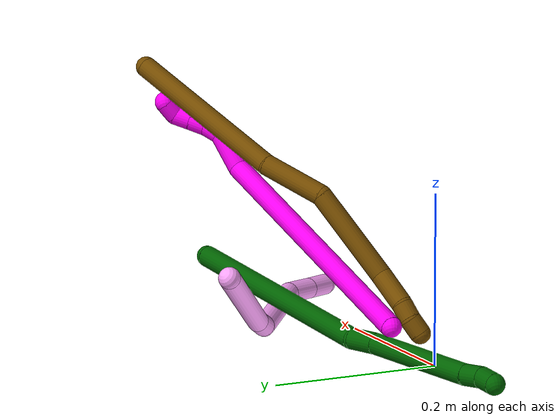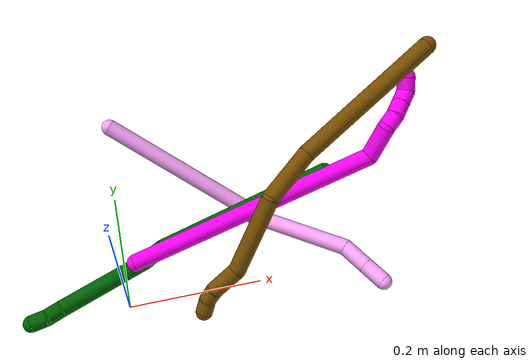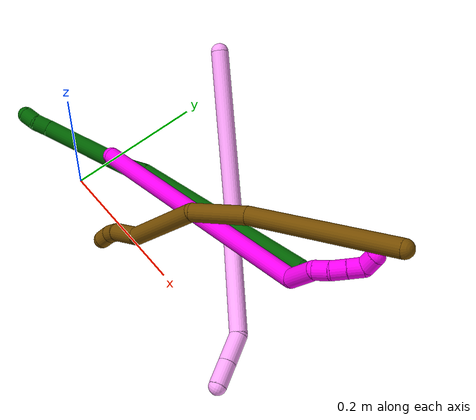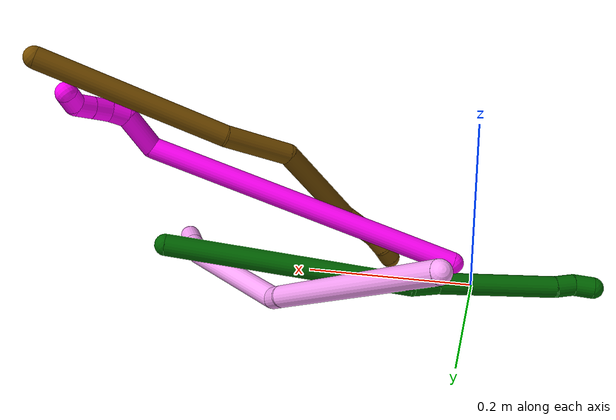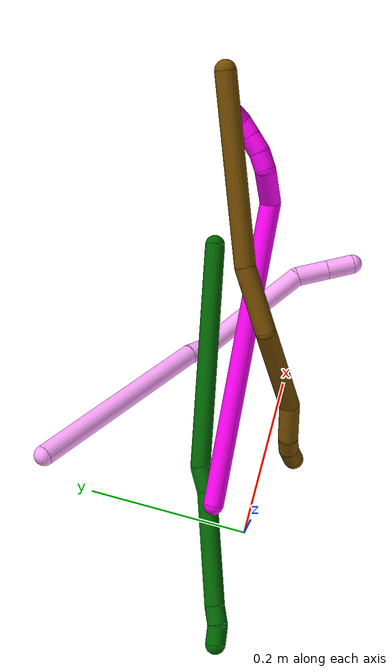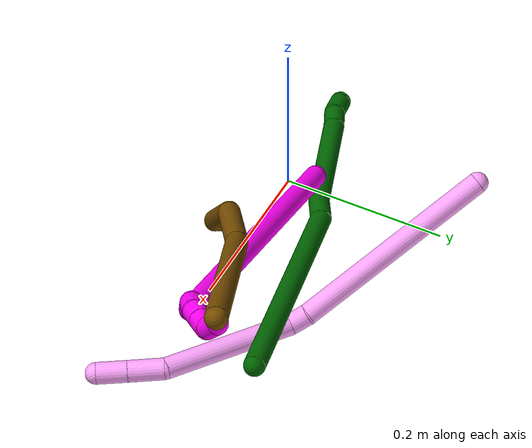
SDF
<sdf version="1.7">
 <world name="default">
  <model name="4">
   <static>0</static>
   <link name="4">
    <collision name="collision-cylinder-e_1_1_4">
     <pose>0.012977 -0.065829 0.101463 0.575531 0.10689 0.031665</pose>
     <geometry><cylinder><radius>0.0125</radius><length>0.243282</length></cylinder></geometry>
     <surface>
      <friction><ode><mu>1.16</mu><mu2>1.16</mu2><slip1>0</slip1><slip2>0</slip2></ode></friction>
      <contact><ode><kp>1e+06</kp><kd>1</kd><max_vel>0</max_vel><min_depth>0.001</min_depth></ode></contact>
     </surface>
    </collision>
    <visual name="visual-cylinder-e_1_1_4">
     <pose>0.012977 -0.065829 0.101463 0.575531 0.10689 0.031665</pose>
     <geometry><cylinder><radius>0.0125</radius><length>0.243282</length></cylinder></geometry>
     <material><ambient>1 0.65098 0.996078 1</ambient></material>
    </visual>
    <collision name="collision-cylinder-e_2_4_5">
     <pose>0.027491 -0.135786 0.213614 0.368543 0.133273 0.024876</pose>
     <geometry><cylinder><radius>0.0125</radius><length>0.023121</length></cylinder></geometry>
     <surface>
      <friction><ode><mu>1.16</mu><mu2>1.16</mu2><slip1>0</slip1><slip2>0</slip2></ode></friction>
      <contact><ode><kp>1e+06</kp><kd>1</kd><max_vel>0</max_vel><min_depth>0.001</min_depth></ode></contact>
     </surface>
    </collision>
    <visual name="visual-cylinder-e_2_4_5">
     <pose>0.027491 -0.135786 0.213614 0.368543 0.133273 0.024876</pose>
     <geometry><cylinder><radius>0.0125</radius><length>0.023121</length></cylinder></geometry>
     <material><ambient>1 0.65098 0.996078 1</ambient></material>
    </visual>
    <collision name="collision-cylinder-e_3_5_6">
     <pose>0.069698 -0.183652 0.274767 0.714124 0.547026 0.208556</pose>
     <geometry><cylinder><radius>0.0125</radius><length>0.156382</length></cylinder></geometry>
     <surface>
      <friction><ode><mu>1.16</mu><mu2>1.16</mu2><slip1>0</slip1><slip2>0</slip2></ode></friction>
      <contact><ode><kp>1e+06</kp><kd>1</kd><max_vel>0</max_vel><min_depth>0.001</min_depth></ode></contact>
     </surface>
    </collision>
    <visual name="visual-cylinder-e_3_5_6">
     <pose>0.069698 -0.183652 0.274767 0.714124 0.547026 0.208556</pose>
     <geometry><cylinder><radius>0.0125</radius><length>0.156382</length></cylinder></geometry>
     <material><ambient>1 0.65098 0.996078 1</ambient></material>
    </visual>
    <collision name="collision-cylinder-e_4_6_7">
     <pose>0.121922 -0.230913 0.342292 0.2036 0.585575 0.061569</pose>
     <geometry><cylinder><radius>0.0125</radius><length>0.041808</length></cylinder></geometry>
     <surface>
      <friction><ode><mu>1.16</mu><mu2>1.16</mu2><slip1>0</slip1><slip2>0</slip2></ode></friction>
      <contact><ode><kp>1e+06</kp><kd>1</kd><max_vel>0</max_vel><min_depth>0.001</min_depth></ode></contact>
     </surface>
    </collision>
    <visual name="visual-cylinder-e_4_6_7">
     <pose>0.121922 -0.230913 0.342292 0.2036 0.585575 0.061569</pose>
     <geometry><cylinder><radius>0.0125</radius><length>0.041808</length></cylinder></geometry>
     <material><ambient>1 0.65098 0.996078 1</ambient></material>
    </visual>
    <collision name="collision-cylinder-e_5_7_2">
     <pose>0.143433 -0.237444 0.373679 0.206959 0.597333 0.063924</pose>
     <geometry><cylinder><radius>0.0125</radius><length>0.035407</length></cylinder></geometry>
     <surface>
      <friction><ode><mu>1.16</mu><mu2>1.16</mu2><slip1>0</slip1><slip2>0</slip2></ode></friction>
      <contact><ode><kp>1e+06</kp><kd>1</kd><max_vel>0</max_vel><min_depth>0.001</min_depth></ode></contact>
     </surface>
    </collision>
    <visual name="visual-cylinder-e_5_7_2">
     <pose>0.143433 -0.237444 0.373679 0.206959 0.597333 0.063924</pose>
     <geometry><cylinder><radius>0.0125</radius><length>0.035407</length></cylinder></geometry>
     <material><ambient>1 0.65098 0.996078 1</ambient></material>
    </visual>
    <collision name="collision-sphere-2">
     <pose>0.15339 -0.240451 0.388005 0 -0 0</pose>
     <geometry><sphere><radius>0.0125</radius></sphere></geometry>
     <surface>
      <friction><ode><mu>1.16</mu><mu2>1.16</mu2><slip1>0</slip1><slip2>0</slip2></ode></friction>
      <contact><ode><kp>1e+06</kp><kd>1</kd><max_vel>0</max_vel><min_depth>0.001</min_depth></ode></contact>
     </surface>
    </collision>
    <visual name="visual-sphere-2">
     <pose>0.15339 -0.240451 0.388005 0 -0 0</pose>
     <geometry><sphere><radius>0.0125</radius></sphere></geometry>
     <material><ambient>1 0.65098 0.996078 1</ambient></material>
    </visual>
    <collision name="collision-sphere-7">
     <pose>0.133475 -0.234436 0.359354 0 -0 0</pose>
     <geometry><sphere><radius>0.0125</radius></sphere></geometry>
     <surface>
      <friction><ode><mu>1.16</mu><mu2>1.16</mu2><slip1>0</slip1><slip2>0</slip2></ode></friction>
      <contact><ode><kp>1e+06</kp><kd>1</kd><max_vel>0</max_vel><min_depth>0.001</min_depth></ode></contact>
     </surface>
    </collision>
    <visual name="visual-sphere-7">
     <pose>0.133475 -0.234436 0.359354 0 -0 0</pose>
     <geometry><sphere><radius>0.0125</radius></sphere></geometry>
     <material><ambient>1 0.65098 0.996078 1</ambient></material>
    </visual>
    <collision name="collision-sphere-6">
     <pose>0.110369 -0.227391 0.325231 0 -0 0</pose>
     <geometry><sphere><radius>0.0125</radius></sphere></geometry>
     <surface>
      <friction><ode><mu>1.16</mu><mu2>1.16</mu2><slip1>0</slip1><slip2>0</slip2></ode></friction>
      <contact><ode><kp>1e+06</kp><kd>1</kd><max_vel>0</max_vel><min_depth>0.001</min_depth></ode></contact>
     </surface>
    </collision>
    <visual name="visual-sphere-6">
     <pose>0.110369 -0.227391 0.325231 0 -0 0</pose>
     <geometry><sphere><radius>0.0125</radius></sphere></geometry>
     <material><ambient>1 0.65098 0.996078 1</ambient></material>
    </visual>
    <collision name="collision-sphere-5">
     <pose>0.029027 -0.139913 0.224303 0 -0 0</pose>
     <geometry><sphere><radius>0.0125</radius></sphere></geometry>
     <surface>
      <friction><ode><mu>1.16</mu><mu2>1.16</mu2><slip1>0</slip1><slip2>0</slip2></ode></friction>
      <contact><ode><kp>1e+06</kp><kd>1</kd><max_vel>0</max_vel><min_depth>0.001</min_depth></ode></contact>
     </surface>
    </collision>
    <visual name="visual-sphere-5">
     <pose>0.029027 -0.139913 0.224303 0 -0 0</pose>
     <geometry><sphere><radius>0.0125</radius></sphere></geometry>
     <material><ambient>1 0.65098 0.996078 1</ambient></material>
    </visual>
    <collision name="collision-sphere-1">
     <geometry><sphere><radius>0.0125</radius></sphere></geometry>
     <surface>
      <friction><ode><mu>1.16</mu><mu2>1.16</mu2><slip1>0</slip1><slip2>0</slip2></ode></friction>
      <contact><ode><kp>1e+06</kp><kd>1</kd><max_vel>0</max_vel><min_depth>0.001</min_depth></ode></contact>
     </surface>
    </collision>
    <visual name="visual-sphere-1">
     <geometry><sphere><radius>0.0125</radius></sphere></geometry>
     <material><ambient>1 0.65098 0.996078 1</ambient></material>
    </visual>
    <collision name="collision-sphere-4">
     <pose>0.025955 -0.131658 0.202926 0 -0 0</pose>
     <geometry><sphere><radius>0.0125</radius></sphere></geometry>
     <surface>
      <friction><ode><mu>1.16</mu><mu2>1.16</mu2><slip1>0</slip1><slip2>0</slip2></ode></friction>
      <contact><ode><kp>1e+06</kp><kd>1</kd><max_vel>0</max_vel><min_depth>0.001</min_depth></ode></contact>
     </surface>
    </collision>
    <visual name="visual-sphere-4">
     <pose>0.025955 -0.131658 0.202926 0 -0 0</pose>
     <geometry><sphere><radius>0.0125</radius></sphere></geometry>
     <material><ambient>1 0.65098 0.996078 1</ambient></material>
    </visual>
    <inertial>
     <pose>0.049736 -0.131871 0.200266 0 -0 0</pose>
     <mass>0.5</mass>
     <inertia>
      <ixx>0.001594</ixx>
      <ixy>0</ixy>
      <ixz>0</ixz>
      <iyy>0.001371</iyy>
      <iyz>0</iyz>
      <izz>0.000564</izz>
     </inertia>
    </inertial>
   </link>
   <pose>0.015862 0.248704 0.1243 -3.11904 -0.914622 -1.24715</pose>
  </model>
  <model name="6">
   <static>0</static>
   <link name="6">
    <collision name="collision-cylinder-e_1_1_4">
     <pose>-0.083208 -0.020434 -0.112136 2.96135 -0.630584 -2.60104</pose>
     <geometry><cylinder><radius>0.0125</radius><length>0.282246</length></cylinder></geometry>
     <surface>
      <friction><ode><mu>1.16</mu><mu2>1.16</mu2><slip1>0</slip1><slip2>0</slip2></ode></friction>
      <contact><ode><kp>1e+06</kp><kd>1</kd><max_vel>0</max_vel><min_depth>0.001</min_depth></ode></contact>
     </surface>
    </collision>
    <visual name="visual-cylinder-e_1_1_4">
     <pose>-0.083208 -0.020434 -0.112136 2.96135 -0.630584 -2.60104</pose>
     <geometry><cylinder><radius>0.0125</radius><length>0.282246</length></cylinder></geometry>
     <material><ambient>0 0.392157 0.003922 1</ambient></material>
    </visual>
    <collision name="collision-cylinder-e_2_4_5">
     <pose>-0.176744 -0.047925 -0.234222 2.52461 -0.702505 -1.71007</pose>
     <geometry><cylinder><radius>0.0125</radius><length>0.031967</length></cylinder></geometry>
     <surface>
      <friction><ode><mu>1.16</mu><mu2>1.16</mu2><slip1>0</slip1><slip2>0</slip2></ode></friction>
      <contact><ode><kp>1e+06</kp><kd>1</kd><max_vel>0</max_vel><min_depth>0.001</min_depth></ode></contact>
     </surface>
    </collision>
    <visual name="visual-cylinder-e_2_4_5">
     <pose>-0.176744 -0.047925 -0.234222 2.52461 -0.702505 -1.71007</pose>
     <geometry><cylinder><radius>0.0125</radius><length>0.031967</length></cylinder></geometry>
     <material><ambient>0 0.392157 0.003922 1</ambient></material>
    </visual>
    <collision name="collision-cylinder-e_3_5_6">
     <pose>-0.232674 -0.073048 -0.293726 2.79202 -0.712906 -2.25593</pose>
     <geometry><cylinder><radius>0.0125</radius><length>0.13945</length></cylinder></geometry>
     <surface>
      <friction><ode><mu>1.16</mu><mu2>1.16</mu2><slip1>0</slip1><slip2>0</slip2></ode></friction>
      <contact><ode><kp>1e+06</kp><kd>1</kd><max_vel>0</max_vel><min_depth>0.001</min_depth></ode></contact>
     </surface>
    </collision>
    <visual name="visual-cylinder-e_3_5_6">
     <pose>-0.232674 -0.073048 -0.293726 2.79202 -0.712906 -2.25593</pose>
     <geometry><cylinder><radius>0.0125</radius><length>0.13945</length></cylinder></geometry>
     <material><ambient>0 0.392157 0.003922 1</ambient></material>
    </visual>
    <collision name="collision-cylinder-e_4_6_7">
     <pose>-0.286701 -0.094942 -0.350315 2.64314 -0.810729 -2.07093</pose>
     <geometry><cylinder><radius>0.0125</radius><length>0.023248</length></cylinder></geometry>
     <surface>
      <friction><ode><mu>1.16</mu><mu2>1.16</mu2><slip1>0</slip1><slip2>0</slip2></ode></friction>
      <contact><ode><kp>1e+06</kp><kd>1</kd><max_vel>0</max_vel><min_depth>0.001</min_depth></ode></contact>
     </surface>
    </collision>
    <visual name="visual-cylinder-e_4_6_7">
     <pose>-0.286701 -0.094942 -0.350315 2.64314 -0.810729 -2.07093</pose>
     <geometry><cylinder><radius>0.0125</radius><length>0.023248</length></cylinder></geometry>
     <material><ambient>0 0.392157 0.003922 1</ambient></material>
    </visual>
    <collision name="collision-cylinder-e_5_7_2">
     <pose>-0.302241 -0.09971 -0.366392 3.03804 -0.664023 -2.84321</pose>
     <geometry><cylinder><radius>0.0125</radius><length>0.02309</length></cylinder></geometry>
     <surface>
      <friction><ode><mu>1.16</mu><mu2>1.16</mu2><slip1>0</slip1><slip2>0</slip2></ode></friction>
      <contact><ode><kp>1e+06</kp><kd>1</kd><max_vel>0</max_vel><min_depth>0.001</min_depth></ode></contact>
     </surface>
    </collision>
    <visual name="visual-cylinder-e_5_7_2">
     <pose>-0.302241 -0.09971 -0.366392 3.03804 -0.664023 -2.84321</pose>
     <geometry><cylinder><radius>0.0125</radius><length>0.02309</length></cylinder></geometry>
     <material><ambient>0 0.392157 0.003922 1</ambient></material>
    </visual>
    <collision name="collision-sphere-2">
     <pose>-0.309356 -0.10065 -0.375435 0 -0 0</pose>
     <geometry><sphere><radius>0.0125</radius></sphere></geometry>
     <surface>
      <friction><ode><mu>1.16</mu><mu2>1.16</mu2><slip1>0</slip1><slip2>0</slip2></ode></friction>
      <contact><ode><kp>1e+06</kp><kd>1</kd><max_vel>0</max_vel><min_depth>0.001</min_depth></ode></contact>
     </surface>
    </collision>
    <visual name="visual-sphere-2">
     <pose>-0.309356 -0.10065 -0.375435 0 -0 0</pose>
     <geometry><sphere><radius>0.0125</radius></sphere></geometry>
     <material><ambient>0 0.392157 0.003922 1</ambient></material>
    </visual>
    <collision name="collision-sphere-7">
     <pose>-0.295126 -0.09877 -0.357349 0 -0 0</pose>
     <geometry><sphere><radius>0.0125</radius></sphere></geometry>
     <surface>
      <friction><ode><mu>1.16</mu><mu2>1.16</mu2><slip1>0</slip1><slip2>0</slip2></ode></friction>
      <contact><ode><kp>1e+06</kp><kd>1</kd><max_vel>0</max_vel><min_depth>0.001</min_depth></ode></contact>
     </surface>
    </collision>
    <visual name="visual-sphere-7">
     <pose>-0.295126 -0.09877 -0.357349 0 -0 0</pose>
     <geometry><sphere><radius>0.0125</radius></sphere></geometry>
     <material><ambient>0 0.392157 0.003922 1</ambient></material>
    </visual>
    <collision name="collision-sphere-6">
     <pose>-0.278277 -0.091113 -0.343281 0 -0 0</pose>
     <geometry><sphere><radius>0.0125</radius></sphere></geometry>
     <surface>
      <friction><ode><mu>1.16</mu><mu2>1.16</mu2><slip1>0</slip1><slip2>0</slip2></ode></friction>
      <contact><ode><kp>1e+06</kp><kd>1</kd><max_vel>0</max_vel><min_depth>0.001</min_depth></ode></contact>
     </surface>
    </collision>
    <visual name="visual-sphere-6">
     <pose>-0.278277 -0.091113 -0.343281 0 -0 0</pose>
     <geometry><sphere><radius>0.0125</radius></sphere></geometry>
     <material><ambient>0 0.392157 0.003922 1</ambient></material>
    </visual>
    <collision name="collision-sphere-5">
     <pose>-0.187071 -0.054983 -0.244171 0 -0 0</pose>
     <geometry><sphere><radius>0.0125</radius></sphere></geometry>
     <surface>
      <friction><ode><mu>1.16</mu><mu2>1.16</mu2><slip1>0</slip1><slip2>0</slip2></ode></friction>
      <contact><ode><kp>1e+06</kp><kd>1</kd><max_vel>0</max_vel><min_depth>0.001</min_depth></ode></contact>
     </surface>
    </collision>
    <visual name="visual-sphere-5">
     <pose>-0.187071 -0.054983 -0.244171 0 -0 0</pose>
     <geometry><sphere><radius>0.0125</radius></sphere></geometry>
     <material><ambient>0 0.392157 0.003922 1</ambient></material>
    </visual>
    <collision name="collision-sphere-1">
     <geometry><sphere><radius>0.0125</radius></sphere></geometry>
     <surface>
      <friction><ode><mu>1.16</mu><mu2>1.16</mu2><slip1>0</slip1><slip2>0</slip2></ode></friction>
      <contact><ode><kp>1e+06</kp><kd>1</kd><max_vel>0</max_vel><min_depth>0.001</min_depth></ode></contact>
     </surface>
    </collision>
    <visual name="visual-sphere-1">
     <geometry><sphere><radius>0.0125</radius></sphere></geometry>
     <material><ambient>0 0.392157 0.003922 1</ambient></material>
    </visual>
    <collision name="collision-sphere-4">
     <pose>-0.166417 -0.040867 -0.224272 0 -0 0</pose>
     <geometry><sphere><radius>0.0125</radius></sphere></geometry>
     <surface>
      <friction><ode><mu>1.16</mu><mu2>1.16</mu2><slip1>0</slip1><slip2>0</slip2></ode></friction>
      <contact><ode><kp>1e+06</kp><kd>1</kd><max_vel>0</max_vel><min_depth>0.001</min_depth></ode></contact>
     </surface>
    </collision>
    <visual name="visual-sphere-4">
     <pose>-0.166417 -0.040867 -0.224272 0 -0 0</pose>
     <geometry><sphere><radius>0.0125</radius></sphere></geometry>
     <material><ambient>0 0.392157 0.003922 1</ambient></material>
    </visual>
    <inertial>
     <pose>-0.150451 -0.043991 -0.193403 0 -0 0</pose>
     <mass>0.5</mass>
     <inertia>
      <ixx>-0.002366</ixx>
      <ixy>0</ixy>
      <ixz>0</ixz>
      <iyy>0.000944</iyy>
      <iyz>0</iyz>
      <izz>0.001574</izz>
     </inertia>
    </inertial>
   </link>
   <pose>0.334913 0.129211 0.073572 0.249689 0.773209 0.255351</pose>
  </model>
  <model name="10">
   <static>0</static>
   <link name="10">
    <collision name="collision-cylinder-e_1_1_4">
     <pose>0.091432 -0.017021 0.160685 0.105535 0.51493 0.027812</pose>
     <geometry><cylinder><radius>0.0125</radius><length>0.371318</length></cylinder></geometry>
     <surface>
      <friction><ode><mu>1.16</mu><mu2>1.16</mu2><slip1>0</slip1><slip2>0</slip2></ode></friction>
      <contact><ode><kp>1e+06</kp><kd>1</kd><max_vel>0</max_vel><min_depth>0.001</min_depth></ode></contact>
     </surface>
    </collision>
    <visual name="visual-cylinder-e_1_1_4">
     <pose>0.091432 -0.017021 0.160685 0.105535 0.51493 0.027812</pose>
     <geometry><cylinder><radius>0.0125</radius><length>0.371318</length></cylinder></geometry>
     <material><ambient>1 0 0.964706 1</ambient></material>
    </visual>
    <collision name="collision-cylinder-e_2_4_5">
     <pose>0.183619 -0.022713 0.342054 -0.501078 0.031984 -0.008186</pose>
     <geometry><cylinder><radius>0.0125</radius><length>0.047191</length></cylinder></geometry>
     <surface>
      <friction><ode><mu>1.16</mu><mu2>1.16</mu2><slip1>0</slip1><slip2>0</slip2></ode></friction>
      <contact><ode><kp>1e+06</kp><kd>1</kd><max_vel>0</max_vel><min_depth>0.001</min_depth></ode></contact>
     </surface>
    </collision>
    <visual name="visual-cylinder-e_2_4_5">
     <pose>0.183619 -0.022713 0.342054 -0.501078 0.031984 -0.008186</pose>
     <geometry><cylinder><radius>0.0125</radius><length>0.047191</length></cylinder></geometry>
     <material><ambient>1 0 0.964706 1</ambient></material>
    </visual>
    <collision name="collision-cylinder-e_3_5_6">
     <pose>0.190243 -0.007264 0.370129 -0.508677 0.60644 -0.162314</pose>
     <geometry><cylinder><radius>0.0125</radius><length>0.020596</length></cylinder></geometry>
     <surface>
      <friction><ode><mu>1.16</mu><mu2>1.16</mu2><slip1>0</slip1><slip2>0</slip2></ode></friction>
      <contact><ode><kp>1e+06</kp><kd>1</kd><max_vel>0</max_vel><min_depth>0.001</min_depth></ode></contact>
     </surface>
    </collision>
    <visual name="visual-cylinder-e_3_5_6">
     <pose>0.190243 -0.007264 0.370129 -0.508677 0.60644 -0.162314</pose>
     <geometry><cylinder><radius>0.0125</radius><length>0.020596</length></cylinder></geometry>
     <material><ambient>1 0 0.964706 1</ambient></material>
    </visual>
    <collision name="collision-cylinder-e_4_6_7">
     <pose>0.202713 0.002468 0.383132 -0.785154 0.693805 -0.297185</pose>
     <geometry><cylinder><radius>0.0125</radius><length>0.020644</length></cylinder></geometry>
     <surface>
      <friction><ode><mu>1.16</mu><mu2>1.16</mu2><slip1>0</slip1><slip2>0</slip2></ode></friction>
      <contact><ode><kp>1e+06</kp><kd>1</kd><max_vel>0</max_vel><min_depth>0.001</min_depth></ode></contact>
     </surface>
    </collision>
    <visual name="visual-cylinder-e_4_6_7">
     <pose>0.202713 0.002468 0.383132 -0.785154 0.693805 -0.297185</pose>
     <geometry><cylinder><radius>0.0125</radius><length>0.020644</length></cylinder></geometry>
     <material><ambient>1 0 0.964706 1</ambient></material>
    </visual>
    <collision name="collision-cylinder-e_5_7_8">
     <pose>0.215829 0.013627 0.394085 -0.804626 0.702166 -0.309213</pose>
     <geometry><cylinder><radius>0.0125</radius><length>0.020175</length></cylinder></geometry>
     <surface>
      <friction><ode><mu>1.16</mu><mu2>1.16</mu2><slip1>0</slip1><slip2>0</slip2></ode></friction>
      <contact><ode><kp>1e+06</kp><kd>1</kd><max_vel>0</max_vel><min_depth>0.001</min_depth></ode></contact>
     </surface>
    </collision>
    <visual name="visual-cylinder-e_5_7_8">
     <pose>0.215829 0.013627 0.394085 -0.804626 0.702166 -0.309213</pose>
     <geometry><cylinder><radius>0.0125</radius><length>0.020175</length></cylinder></geometry>
     <material><ambient>1 0 0.964706 1</ambient></material>
    </visual>
    <collision name="collision-cylinder-e_6_8_2">
     <pose>0.222264 0.027622 0.40485 -0.999856 -0.007942 0.004338</pose>
     <geometry><cylinder><radius>0.0125</radius><length>0.020075</length></cylinder></geometry>
     <surface>
      <friction><ode><mu>1.16</mu><mu2>1.16</mu2><slip1>0</slip1><slip2>0</slip2></ode></friction>
      <contact><ode><kp>1e+06</kp><kd>1</kd><max_vel>0</max_vel><min_depth>0.001</min_depth></ode></contact>
     </surface>
    </collision>
    <visual name="visual-cylinder-e_6_8_2">
     <pose>0.222264 0.027622 0.40485 -0.999856 -0.007942 0.004338</pose>
     <geometry><cylinder><radius>0.0125</radius><length>0.020075</length></cylinder></geometry>
     <material><ambient>1 0 0.964706 1</ambient></material>
    </visual>
    <collision name="collision-sphere-2">
     <pose>0.222185 0.036067 0.410274 0 -0 0</pose>
     <geometry><sphere><radius>0.0125</radius></sphere></geometry>
     <surface>
      <friction><ode><mu>1.16</mu><mu2>1.16</mu2><slip1>0</slip1><slip2>0</slip2></ode></friction>
      <contact><ode><kp>1e+06</kp><kd>1</kd><max_vel>0</max_vel><min_depth>0.001</min_depth></ode></contact>
     </surface>
    </collision>
    <visual name="visual-sphere-2">
     <pose>0.222185 0.036067 0.410274 0 -0 0</pose>
     <geometry><sphere><radius>0.0125</radius></sphere></geometry>
     <material><ambient>1 0 0.964706 1</ambient></material>
    </visual>
    <collision name="collision-sphere-4">
     <pose>0.182864 -0.034042 0.32137 0 -0 0</pose>
     <geometry><sphere><radius>0.0125</radius></sphere></geometry>
     <surface>
      <friction><ode><mu>1.16</mu><mu2>1.16</mu2><slip1>0</slip1><slip2>0</slip2></ode></friction>
      <contact><ode><kp>1e+06</kp><kd>1</kd><max_vel>0</max_vel><min_depth>0.001</min_depth></ode></contact>
     </surface>
    </collision>
    <visual name="visual-sphere-4">
     <pose>0.182864 -0.034042 0.32137 0 -0 0</pose>
     <geometry><sphere><radius>0.0125</radius></sphere></geometry>
     <material><ambient>1 0 0.964706 1</ambient></material>
    </visual>
    <collision name="collision-sphere-1">
     <geometry><sphere><radius>0.0125</radius></sphere></geometry>
     <surface>
      <friction><ode><mu>1.16</mu><mu2>1.16</mu2><slip1>0</slip1><slip2>0</slip2></ode></friction>
      <contact><ode><kp>1e+06</kp><kd>1</kd><max_vel>0</max_vel><min_depth>0.001</min_depth></ode></contact>
     </surface>
    </collision>
    <visual name="visual-sphere-1">
     <geometry><sphere><radius>0.0125</radius></sphere></geometry>
     <material><ambient>1 0 0.964706 1</ambient></material>
    </visual>
    <collision name="collision-sphere-8">
     <pose>0.222344 0.019176 0.399425 0 -0 0</pose>
     <geometry><sphere><radius>0.0125</radius></sphere></geometry>
     <surface>
      <friction><ode><mu>1.16</mu><mu2>1.16</mu2><slip1>0</slip1><slip2>0</slip2></ode></friction>
      <contact><ode><kp>1e+06</kp><kd>1</kd><max_vel>0</max_vel><min_depth>0.001</min_depth></ode></contact>
     </surface>
    </collision>
    <visual name="visual-sphere-8">
     <pose>0.222344 0.019176 0.399425 0 -0 0</pose>
     <geometry><sphere><radius>0.0125</radius></sphere></geometry>
     <material><ambient>1 0 0.964706 1</ambient></material>
    </visual>
    <collision name="collision-sphere-5">
     <pose>0.184373 -0.011385 0.362739 0 -0 0</pose>
     <geometry><sphere><radius>0.0125</radius></sphere></geometry>
     <surface>
      <friction><ode><mu>1.16</mu><mu2>1.16</mu2><slip1>0</slip1><slip2>0</slip2></ode></friction>
      <contact><ode><kp>1e+06</kp><kd>1</kd><max_vel>0</max_vel><min_depth>0.001</min_depth></ode></contact>
     </surface>
    </collision>
    <visual name="visual-sphere-5">
     <pose>0.184373 -0.011385 0.362739 0 -0 0</pose>
     <geometry><sphere><radius>0.0125</radius></sphere></geometry>
     <material><ambient>1 0 0.964706 1</ambient></material>
    </visual>
    <collision name="collision-sphere-6">
     <pose>0.196112 -0.003142 0.37752 0 -0 0</pose>
     <geometry><sphere><radius>0.0125</radius></sphere></geometry>
     <surface>
      <friction><ode><mu>1.16</mu><mu2>1.16</mu2><slip1>0</slip1><slip2>0</slip2></ode></friction>
      <contact><ode><kp>1e+06</kp><kd>1</kd><max_vel>0</max_vel><min_depth>0.001</min_depth></ode></contact>
     </surface>
    </collision>
    <visual name="visual-sphere-6">
     <pose>0.196112 -0.003142 0.37752 0 -0 0</pose>
     <geometry><sphere><radius>0.0125</radius></sphere></geometry>
     <material><ambient>1 0 0.964706 1</ambient></material>
    </visual>
    <collision name="collision-sphere-7">
     <pose>0.209313 0.008078 0.388745 0 -0 0</pose>
     <geometry><sphere><radius>0.0125</radius></sphere></geometry>
     <surface>
      <friction><ode><mu>1.16</mu><mu2>1.16</mu2><slip1>0</slip1><slip2>0</slip2></ode></friction>
      <contact><ode><kp>1e+06</kp><kd>1</kd><max_vel>0</max_vel><min_depth>0.001</min_depth></ode></contact>
     </surface>
    </collision>
    <visual name="visual-sphere-7">
     <pose>0.209313 0.008078 0.388745 0 -0 0</pose>
     <geometry><sphere><radius>0.0125</radius></sphere></geometry>
     <material><ambient>1 0 0.964706 1</ambient></material>
    </visual>
    <inertial>
     <pose>0.11907 -0.013323 0.214836 0 -0 0</pose>
     <mass>0.5</mass>
     <inertia>
      <ixx>0.00386</ixx>
      <ixy>0</ixy>
      <ixz>0</ixz>
      <iyy>0.004381</iyy>
      <iyz>0</iyz>
      <izz>-0.001695</izz>
     </inertia>
    </inertial>
   </link>
   <pose>0.019472 0.04598 0.046849 0.555749 0.549418 0.673493</pose>
  </model>
  <model name="12">
   <static>0</static>
   <link name="12">
    <collision name="collision-cylinder-e_1_1_4">
     <pose>-0.041603 -0.00642 -0.100153 3.07757 -0.392978 -2.8226</pose>
     <geometry><cylinder><radius>0.0125</radius><length>0.217279</length></cylinder></geometry>
     <surface>
      <friction><ode><mu>1.16</mu><mu2>1.16</mu2><slip1>0</slip1><slip2>0</slip2></ode></friction>
      <contact><ode><kp>1e+06</kp><kd>1</kd><max_vel>0</max_vel><min_depth>0.001</min_depth></ode></contact>
     </surface>
    </collision>
    <visual name="visual-cylinder-e_1_1_4">
     <pose>-0.041603 -0.00642 -0.100153 3.07757 -0.392978 -2.8226</pose>
     <geometry><cylinder><radius>0.0125</radius><length>0.217279</length></cylinder></geometry>
     <material><ambient>0.466667 0.301961 0 1</ambient></material>
    </visual>
    <collision name="collision-cylinder-e_2_4_5">
     <pose>-0.100835 -0.02291 -0.234559 2.8557 -0.458677 -2.03662</pose>
     <geometry><cylinder><radius>0.0125</radius><length>0.079637</length></cylinder></geometry>
     <surface>
      <friction><ode><mu>1.16</mu><mu2>1.16</mu2><slip1>0</slip1><slip2>0</slip2></ode></friction>
      <contact><ode><kp>1e+06</kp><kd>1</kd><max_vel>0</max_vel><min_depth>0.001</min_depth></ode></contact>
     </surface>
    </collision>
    <visual name="visual-cylinder-e_2_4_5">
     <pose>-0.100835 -0.02291 -0.234559 2.8557 -0.458677 -2.03662</pose>
     <geometry><cylinder><radius>0.0125</radius><length>0.079637</length></cylinder></geometry>
     <material><ambient>0.466667 0.301961 0 1</ambient></material>
    </visual>
    <collision name="collision-cylinder-e_3_5_6">
     <pose>-0.116326 -0.050861 -0.324347 2.83007 0.036658 0.232413</pose>
     <geometry><cylinder><radius>0.0125</radius><length>0.116763</length></cylinder></geometry>
     <surface>
      <friction><ode><mu>1.16</mu><mu2>1.16</mu2><slip1>0</slip1><slip2>0</slip2></ode></friction>
      <contact><ode><kp>1e+06</kp><kd>1</kd><max_vel>0</max_vel><min_depth>0.001</min_depth></ode></contact>
     </surface>
    </collision>
    <visual name="visual-cylinder-e_3_5_6">
     <pose>-0.116326 -0.050861 -0.324347 2.83007 0.036658 0.232413</pose>
     <geometry><cylinder><radius>0.0125</radius><length>0.116763</length></cylinder></geometry>
     <material><ambient>0.466667 0.301961 0 1</ambient></material>
    </visual>
    <collision name="collision-cylinder-e_4_6_7">
     <pose>-0.117943 -0.068255 -0.402597 -3.12011 -0.163883 2.88143</pose>
     <geometry><cylinder><radius>0.0125</radius><length>0.046061</length></cylinder></geometry>
     <surface>
      <friction><ode><mu>1.16</mu><mu2>1.16</mu2><slip1>0</slip1><slip2>0</slip2></ode></friction>
      <contact><ode><kp>1e+06</kp><kd>1</kd><max_vel>0</max_vel><min_depth>0.001</min_depth></ode></contact>
     </surface>
    </collision>
    <visual name="visual-cylinder-e_4_6_7">
     <pose>-0.117943 -0.068255 -0.402597 -3.12011 -0.163883 2.88143</pose>
     <geometry><cylinder><radius>0.0125</radius><length>0.046061</length></cylinder></geometry>
     <material><ambient>0.466667 0.301961 0 1</ambient></material>
    </visual>
    <collision name="collision-cylinder-e_5_7_8">
     <pose>-0.121008 -0.068918 -0.435237 3.02605 0.069243 1.07915</pose>
     <geometry><cylinder><radius>0.0125</radius><length>0.020027</length></cylinder></geometry>
     <surface>
      <friction><ode><mu>1.16</mu><mu2>1.16</mu2><slip1>0</slip1><slip2>0</slip2></ode></friction>
      <contact><ode><kp>1e+06</kp><kd>1</kd><max_vel>0</max_vel><min_depth>0.001</min_depth></ode></contact>
     </surface>
    </collision>
    <visual name="visual-cylinder-e_5_7_8">
     <pose>-0.121008 -0.068918 -0.435237 3.02605 0.069243 1.07915</pose>
     <geometry><cylinder><radius>0.0125</radius><length>0.020027</length></cylinder></geometry>
     <material><ambient>0.466667 0.301961 0 1</ambient></material>
    </visual>
    <collision name="collision-cylinder-e_6_8_2">
     <pose>-0.118895 -0.074048 -0.454353 2.73317 0.140823 0.656474</pose>
     <geometry><cylinder><radius>0.0125</radius><length>0.020233</length></cylinder></geometry>
     <surface>
      <friction><ode><mu>1.16</mu><mu2>1.16</mu2><slip1>0</slip1><slip2>0</slip2></ode></friction>
      <contact><ode><kp>1e+06</kp><kd>1</kd><max_vel>0</max_vel><min_depth>0.001</min_depth></ode></contact>
     </surface>
    </collision>
    <visual name="visual-cylinder-e_6_8_2">
     <pose>-0.118895 -0.074048 -0.454353 2.73317 0.140823 0.656474</pose>
     <geometry><cylinder><radius>0.0125</radius><length>0.020233</length></cylinder></geometry>
     <material><ambient>0.466667 0.301961 0 1</ambient></material>
    </visual>
    <collision name="collision-sphere-2">
     <pose>-0.117475 -0.078026 -0.463545 0 -0 0</pose>
     <geometry><sphere><radius>0.0125</radius></sphere></geometry>
     <surface>
      <friction><ode><mu>1.16</mu><mu2>1.16</mu2><slip1>0</slip1><slip2>0</slip2></ode></friction>
      <contact><ode><kp>1e+06</kp><kd>1</kd><max_vel>0</max_vel><min_depth>0.001</min_depth></ode></contact>
     </surface>
    </collision>
    <visual name="visual-sphere-2">
     <pose>-0.117475 -0.078026 -0.463545 0 -0 0</pose>
     <geometry><sphere><radius>0.0125</radius></sphere></geometry>
     <material><ambient>0.466667 0.301961 0 1</ambient></material>
    </visual>
    <collision name="collision-sphere-4">
     <pose>-0.083205 -0.012841 -0.200305 0 -0 0</pose>
     <geometry><sphere><radius>0.0125</radius></sphere></geometry>
     <surface>
      <friction><ode><mu>1.16</mu><mu2>1.16</mu2><slip1>0</slip1><slip2>0</slip2></ode></friction>
      <contact><ode><kp>1e+06</kp><kd>1</kd><max_vel>0</max_vel><min_depth>0.001</min_depth></ode></contact>
     </surface>
    </collision>
    <visual name="visual-sphere-4">
     <pose>-0.083205 -0.012841 -0.200305 0 -0 0</pose>
     <geometry><sphere><radius>0.0125</radius></sphere></geometry>
     <material><ambient>0.466667 0.301961 0 1</ambient></material>
    </visual>
    <collision name="collision-sphere-1">
     <geometry><sphere><radius>0.0125</radius></sphere></geometry>
     <surface>
      <friction><ode><mu>1.16</mu><mu2>1.16</mu2><slip1>0</slip1><slip2>0</slip2></ode></friction>
      <contact><ode><kp>1e+06</kp><kd>1</kd><max_vel>0</max_vel><min_depth>0.001</min_depth></ode></contact>
     </surface>
    </collision>
    <visual name="visual-sphere-1">
     <geometry><sphere><radius>0.0125</radius></sphere></geometry>
     <material><ambient>0.466667 0.301961 0 1</ambient></material>
    </visual>
    <collision name="collision-sphere-8">
     <pose>-0.120315 -0.07007 -0.44516 0 -0 0</pose>
     <geometry><sphere><radius>0.0125</radius></sphere></geometry>
     <surface>
      <friction><ode><mu>1.16</mu><mu2>1.16</mu2><slip1>0</slip1><slip2>0</slip2></ode></friction>
      <contact><ode><kp>1e+06</kp><kd>1</kd><max_vel>0</max_vel><min_depth>0.001</min_depth></ode></contact>
     </surface>
    </collision>
    <visual name="visual-sphere-8">
     <pose>-0.120315 -0.07007 -0.44516 0 -0 0</pose>
     <geometry><sphere><radius>0.0125</radius></sphere></geometry>
     <material><ambient>0.466667 0.301961 0 1</ambient></material>
    </visual>
    <collision name="collision-sphere-5">
     <pose>-0.118465 -0.032978 -0.268813 0 -0 0</pose>
     <geometry><sphere><radius>0.0125</radius></sphere></geometry>
     <surface>
      <friction><ode><mu>1.16</mu><mu2>1.16</mu2><slip1>0</slip1><slip2>0</slip2></ode></friction>
      <contact><ode><kp>1e+06</kp><kd>1</kd><max_vel>0</max_vel><min_depth>0.001</min_depth></ode></contact>
     </surface>
    </collision>
    <visual name="visual-sphere-5">
     <pose>-0.118465 -0.032978 -0.268813 0 -0 0</pose>
     <geometry><sphere><radius>0.0125</radius></sphere></geometry>
     <material><ambient>0.466667 0.301961 0 1</ambient></material>
    </visual>
    <collision name="collision-sphere-6">
     <pose>-0.114186 -0.068743 -0.379881 0 -0 0</pose>
     <geometry><sphere><radius>0.0125</radius></sphere></geometry>
     <surface>
      <friction><ode><mu>1.16</mu><mu2>1.16</mu2><slip1>0</slip1><slip2>0</slip2></ode></friction>
      <contact><ode><kp>1e+06</kp><kd>1</kd><max_vel>0</max_vel><min_depth>0.001</min_depth></ode></contact>
     </surface>
    </collision>
    <visual name="visual-sphere-6">
     <pose>-0.114186 -0.068743 -0.379881 0 -0 0</pose>
     <geometry><sphere><radius>0.0125</radius></sphere></geometry>
     <material><ambient>0.466667 0.301961 0 1</ambient></material>
    </visual>
    <collision name="collision-sphere-7">
     <pose>-0.121701 -0.067767 -0.425314 0 -0 0</pose>
     <geometry><sphere><radius>0.0125</radius></sphere></geometry>
     <surface>
      <friction><ode><mu>1.16</mu><mu2>1.16</mu2><slip1>0</slip1><slip2>0</slip2></ode></friction>
      <contact><ode><kp>1e+06</kp><kd>1</kd><max_vel>0</max_vel><min_depth>0.001</min_depth></ode></contact>
     </surface>
    </collision>
    <visual name="visual-sphere-7">
     <pose>-0.121701 -0.067767 -0.425314 0 -0 0</pose>
     <geometry><sphere><radius>0.0125</radius></sphere></geometry>
     <material><ambient>0.466667 0.301961 0 1</ambient></material>
    </visual>
    <inertial>
     <pose>-0.081827 -0.030361 -0.229532 0 -0 0</pose>
     <mass>0.5</mass>
     <inertia>
      <ixx>-0.000909</ixx>
      <ixy>0</ixy>
      <ixz>0</ixz>
      <iyy>0.000474</iyy>
      <iyz>0</iyz>
      <izz>0.000416</izz>
     </inertia>
    </inertial>
   </link>
   <pose>0.458577 0.15198 0.284196 0.159185 0.728084 0.480832</pose>
  </model>
 </world>
</sdf>
